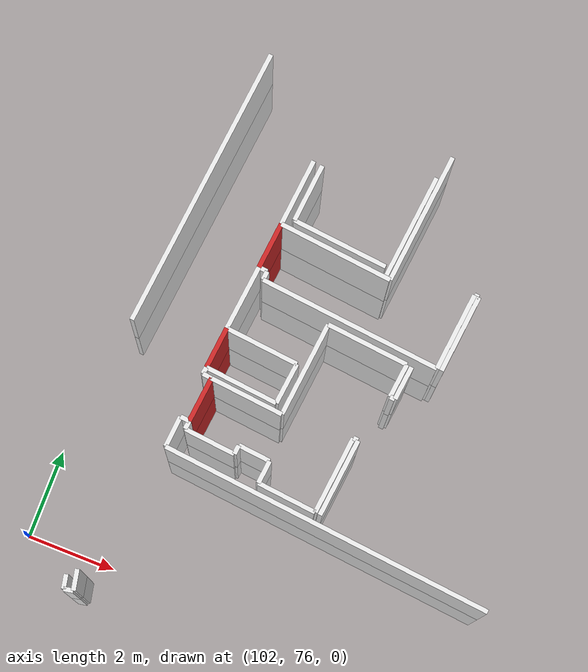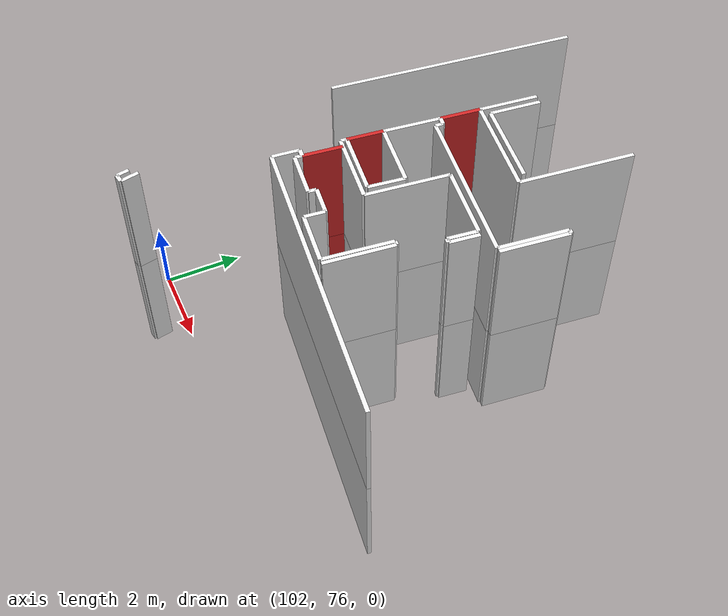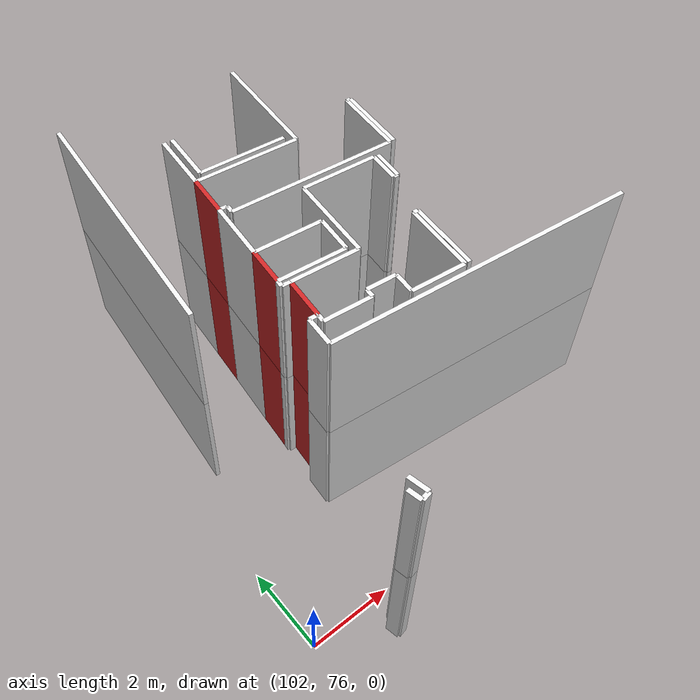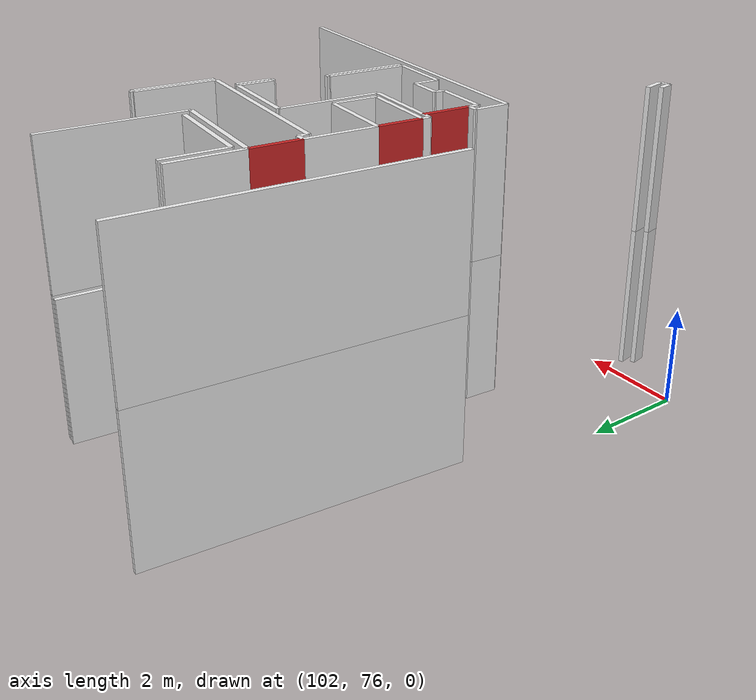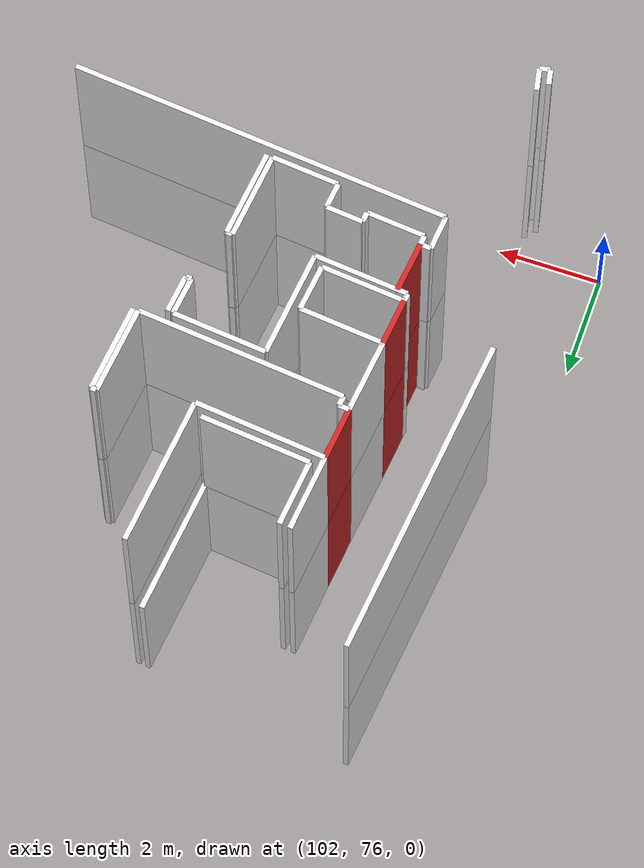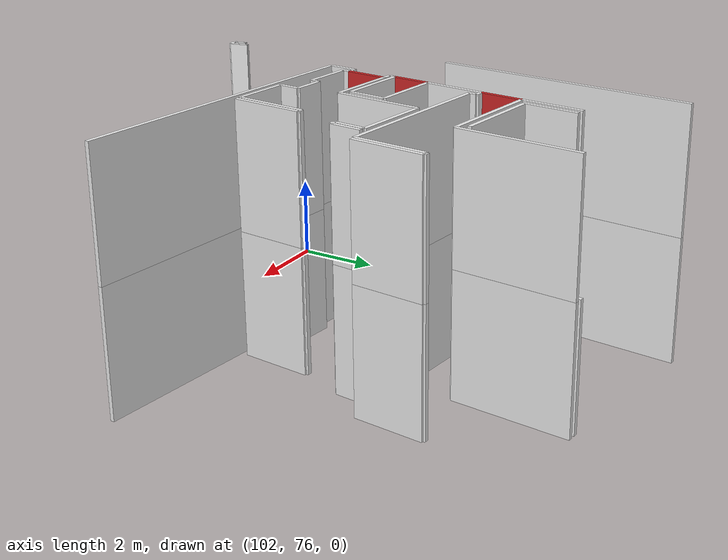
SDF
<sdf version="1.6">
 <world name="default">
  <model name="wall_104.7_79.7_1.5">
   <static>true</static>
   <pose>104.70999999999185 79.65999999991618 1.5 0 0 -1.6724851785951633</pose>
   <link name="link">
    <visual name="visual">
     <geometry><box><size>0.9850888284669952 0.1 3</size></box></geometry>
     <material>
      <script><uri>file://media/materials/scripts/gazebo.material</uri><name>Gazebo/Red</name></script>
     </material>
    </visual>
    <collision name="collision"><geometry><box><size>0.9850888284669952 0.1 3</size></box></geometry></collision>
   </link>
  </model>
  <model name="wall_104.9_83.1_1.5">
   <static>true</static>
   <pose>104.86999999999534 83.12999999988824 1.5 0 0 1.4711276743267871</pose>
   <link name="link">
    <visual name="visual">
     <geometry><box><size>1.0049875621097721 0.1 3</size></box></geometry>
     <material>
      <script><uri>file://media/materials/scripts/gazebo.material</uri><name>Gazebo/Red</name></script>
     </material>
    </visual>
    <collision name="collision"><geometry><box><size>1.0049875621097721 0.1 3</size></box></geometry></collision>
   </link>
  </model>
  <model name="wall_104.6_80.8_1.5">
   <static>true</static>
   <pose>104.625 80.77000000001863 1.5 0 0 -1.6704649792092168</pose>
   <link name="link">
    <visual name="visual">
     <geometry><box><size>0.904488806268317 0.1 3</size></box></geometry>
     <material>
      <script><uri>file://media/materials/scripts/gazebo.material</uri><name>Gazebo/Red</name></script>
     </material>
    </visual>
    <collision name="collision"><geometry><box><size>0.904488806268317 0.1 3</size></box></geometry></collision>
   </link>
  </model>
  <model name="wall_104.7_79.7_4.5">
   <static>true</static>
   <pose>104.70999999999185 79.65999999991618 4.5 0 0 -1.6724851785951633</pose>
   <link name="link">
    <visual name="visual">
     <geometry><box><size>0.9850888284669952 0.1 3</size></box></geometry>
     <material>
      <script><uri>file://media/materials/scripts/gazebo.material</uri><name>Gazebo/Red</name></script>
     </material>
    </visual>
    <collision name="collision"><geometry><box><size>0.9850888284669952 0.1 3</size></box></geometry></collision>
   </link>
  </model>
  <model name="wall_104.9_83.1_4.5">
   <static>true</static>
   <pose>104.86999999999534 83.12999999988824 4.5 0 0 1.4711276743267871</pose>
   <link name="link">
    <visual name="visual">
     <geometry><box><size>1.0049875621097721 0.1 3</size></box></geometry>
     <material>
      <script><uri>file://media/materials/scripts/gazebo.material</uri><name>Gazebo/Red</name></script>
     </material>
    </visual>
    <collision name="collision"><geometry><box><size>1.0049875621097721 0.1 3</size></box></geometry></collision>
   </link>
  </model>
  <model name="wall_104.6_80.8_4.5">
   <static>true</static>
   <pose>104.625 80.77000000001863 4.5 0 0 -1.6704649792092168</pose>
   <link name="link">
    <visual name="visual">
     <geometry><box><size>0.904488806268317 0.1 3</size></box></geometry>
     <material>
      <script><uri>file://media/materials/scripts/gazebo.material</uri><name>Gazebo/Red</name></script>
     </material>
    </visual>
    <collision name="collision"><geometry><box><size>0.904488806268317 0.1 3</size></box></geometry></collision>
   </link>
  </model>
  <model name="wall_108.4_81.5_1.5">
   <static>true</static>
   <pose>108.42999999999302 81.48999999999069 1.5 0 0 -1.6784861976067038</pose>
   <link name="link">
    <visual name="visual">
     <geometry><box><size>0.7443117623918901 0.1 3</size></box></geometry>
     <material>
      <script><uri>file://media/materials/scripts/gazebo.material</uri><name>Gazebo/White</name></script>
     </material>
    </visual>
    <collision name="collision"><geometry><box><size>0.7443117623918901 0.1 3</size></box></geometry></collision>
   </link>
  </model>
  <model name="wall_108.3_81.1_1.5">
   <static>true</static>
   <pose>108.33500000002095 81.125 1.5 0 0 3.0509327683929186</pose>
   <link name="link">
    <visual name="visual">
     <geometry><box><size>0.11045361013772383 0.1 3</size></box></geometry>
     <material>
      <script><uri>file://media/materials/scripts/gazebo.material</uri><name>Gazebo/White</name></script>
     </material>
    </visual>
    <collision name="collision"><geometry><box><size>0.11045361013772383 0.1 3</size></box></geometry></collision>
   </link>
  </model>
  <model name="wall_108.3_81.5_1.5">
   <static>true</static>
   <pose>108.32000000000698 81.5 1.5 0 0 1.463106456050333</pose>
   <link name="link">
    <visual name="visual">
     <geometry><box><size>0.7443117628548539 0.1 3</size></box></geometry>
     <material>
      <script><uri>file://media/materials/scripts/gazebo.material</uri><name>Gazebo/White</name></script>
     </material>
    </visual>
    <collision name="collision"><geometry><box><size>0.7443117628548539 0.1 3</size></box></geometry></collision>
   </link>
  </model>
  <model name="wall_107.5_82.0_1.5">
   <static>true</static>
   <pose>107.46499999999651 81.95999999996275 1.5 0 0 3.04137090397356</pose>
   <link name="link">
    <visual name="visual">
     <geometry><box><size>1.7990275150251853 0.1 3</size></box></geometry>
     <material>
      <script><uri>file://media/materials/scripts/gazebo.material</uri><name>Gazebo/White</name></script>
     </material>
    </visual>
    <collision name="collision"><geometry><box><size>1.7990275150251853 0.1 3</size></box></geometry></collision>
   </link>
  </model>
  <model name="wall_106.5_81.0_1.5">
   <static>true</static>
   <pose>106.46499999999651 81.02000000001863 1.5 0 0 -1.672387129760109</pose>
   <link name="link">
    <visual name="visual">
     <geometry><box><size>2.070676217644975 0.1 3</size></box></geometry>
     <material>
      <script><uri>file://media/materials/scripts/gazebo.material</uri><name>Gazebo/White</name></script>
     </material>
    </visual>
    <collision name="collision"><geometry><box><size>2.070676217644975 0.1 3</size></box></geometry></collision>
   </link>
  </model>
  <model name="wall_105.6_80.1_1.5">
   <static>true</static>
   <pose>105.55999999999767 80.07000000006519 1.5 0 0 3.041924001293137</pose>
   <link name="link">
    <visual name="visual">
     <geometry><box><size>1.6079800993246671 0.1 3</size></box></geometry>
     <material>
      <script><uri>file://media/materials/scripts/gazebo.material</uri><name>Gazebo/White</name></script>
     </material>
    </visual>
    <collision name="collision"><geometry><box><size>1.6079800993246671 0.1 3</size></box></geometry></collision>
   </link>
  </model>
  <model name="wall_104.6_79.1_1.5">
   <static>true</static>
   <pose>104.64999999999418 79.0800000000745 1.5 0 0 -1.6814535479332997</pose>
   <link name="link">
    <visual name="visual">
     <geometry><box><size>0.1811077024621769 0.1 3</size></box></geometry>
     <material>
      <script><uri>file://media/materials/scripts/gazebo.material</uri><name>Gazebo/White</name></script>
     </material>
    </visual>
    <collision name="collision"><geometry><box><size>0.1811077024621769 0.1 3</size></box></geometry></collision>
   </link>
  </model>
  <model name="wall_105.2_78.9_1.5">
   <static>true</static>
   <pose>105.20000000001164 78.93500000005588 1.5 0 0 -0.09790030803535979</pose>
   <link name="link">
    <visual name="visual">
     <geometry><box><size>1.1253888217248873 0.1 3</size></box></geometry>
     <material>
      <script><uri>file://media/materials/scripts/gazebo.material</uri><name>Gazebo/White</name></script>
     </material>
    </visual>
    <collision name="collision"><geometry><box><size>1.1253888217248873 0.1 3</size></box></geometry></collision>
   </link>
  </model>
  <model name="wall_105.8_79.0_1.5">
   <static>true</static>
   <pose>105.77000000001863 78.97999999998137 1.5 0 0 1.4711276743037347</pose>
   <link name="link">
    <visual name="visual">
     <geometry><box><size>0.20099751260961132 0.1 3</size></box></geometry>
     <material>
      <script><uri>file://media/materials/scripts/gazebo.material</uri><name>Gazebo/White</name></script>
     </material>
    </visual>
    <collision name="collision"><geometry><box><size>0.20099751260961132 0.1 3</size></box></geometry></collision>
   </link>
  </model>
  <model name="wall_106.1_79.0_1.5">
   <static>true</static>
   <pose>106.13000000000466 79.0449999999255 1.5 0 0 -0.0996686529192806</pose>
   <link name="link">
    <visual name="visual">
     <geometry><box><size>0.7034912934617817 0.1 3</size></box></geometry>
     <material>
      <script><uri>file://media/materials/scripts/gazebo.material</uri><name>Gazebo/White</name></script>
     </material>
    </visual>
    <collision name="collision"><geometry><box><size>0.7034912934617817 0.1 3</size></box></geometry></collision>
   </link>
  </model>
  <model name="wall_106.5_78.8_1.5">
   <static>true</static>
   <pose>106.4549999999872 78.75999999977648 1.5 0 0 -1.6704649792630062</pose>
   <link name="link">
    <visual name="visual">
     <geometry><box><size>0.5024937810548861 0.1 3</size></box></geometry>
     <material>
      <script><uri>file://media/materials/scripts/gazebo.material</uri><name>Gazebo/White</name></script>
     </material>
    </visual>
    <collision name="collision"><geometry><box><size>0.5024937810548861 0.1 3</size></box></geometry></collision>
   </link>
  </model>
  <model name="wall_107.1_78.4_1.5">
   <static>true</static>
   <pose>107.07499999998254 78.44499999983236 1.5 0 0 -0.10043611196470777</pose>
   <link name="link">
    <visual name="visual">
     <geometry><box><size>1.2965338406369806 0.1 3</size></box></geometry>
     <material>
      <script><uri>file://media/materials/scripts/gazebo.material</uri><name>Gazebo/White</name></script>
     </material>
    </visual>
    <collision name="collision"><geometry><box><size>1.2965338406369806 0.1 3</size></box></geometry></collision>
   </link>
  </model>
  <model name="wall_107.8_79.2_1.5">
   <static>true</static>
   <pose>107.80499999999302 79.2249999998603 1.5 0 0 1.4705418512614783</pose>
   <link name="link">
    <visual name="visual">
     <geometry><box><size>1.6985287750948987 0.1 3</size></box></geometry>
     <material>
      <script><uri>file://media/materials/scripts/gazebo.material</uri><name>Gazebo/White</name></script>
     </material>
    </visual>
    <collision name="collision"><geometry><box><size>1.6985287750948987 0.1 3</size></box></geometry></collision>
   </link>
  </model>
  <model name="wall_107.9_80.1_1.5">
   <static>true</static>
   <pose>107.94500000000698 80.06499999994412 1.5 0 0 -0.09065988519687482</pose>
   <link name="link">
    <visual name="visual">
     <geometry><box><size>0.11045361013772383 0.1 3</size></box></geometry>
     <material>
      <script><uri>file://media/materials/scripts/gazebo.material</uri><name>Gazebo/White</name></script>
     </material>
    </visual>
    <collision name="collision"><geometry><box><size>0.11045361013772383 0.1 3</size></box></geometry></collision>
   </link>
  </model>
  <model name="wall_107.9_79.2_1.5">
   <static>true</static>
   <pose>107.91500000000815 79.20999999996275 1.5 0 0 -1.6704649792657182</pose>
   <link name="link">
    <visual name="visual">
     <geometry><box><size>1.7084788557742698 0.1 3</size></box></geometry>
     <material>
      <script><uri>file://media/materials/scripts/gazebo.material</uri><name>Gazebo/White</name></script>
     </material>
    </visual>
    <collision name="collision"><geometry><box><size>1.7084788557742698 0.1 3</size></box></geometry></collision>
   </link>
  </model>
  <model name="wall_109.1_82.9_1.5">
   <static>true</static>
   <pose>109.14499999998952 82.85499999998137 1.5 0 0 1.470541851323015</pose>
   <link name="link">
    <visual name="visual">
     <geometry><box><size>1.698528775552396 0.1 3</size></box></geometry>
     <material>
      <script><uri>file://media/materials/scripts/gazebo.material</uri><name>Gazebo/White</name></script>
     </material>
    </visual>
    <collision name="collision"><geometry><box><size>1.698528775552396 0.1 3</size></box></geometry></collision>
   </link>
  </model>
  <model name="wall_109.2_83.7_1.5">
   <static>true</static>
   <pose>109.17999999999302 83.7050000000745 1.5 0 0 3.0419240032886226</pose>
   <link name="link">
    <visual name="visual">
     <geometry><box><size>0.10049875616580058 0.1 3</size></box></geometry>
     <material>
      <script><uri>file://media/materials/scripts/gazebo.material</uri><name>Gazebo/White</name></script>
     </material>
    </visual>
    <collision name="collision"><geometry><box><size>0.10049875616580058 0.1 3</size></box></geometry></collision>
   </link>
  </model>
  <model name="wall_109.0_82.9_1.5">
   <static>true</static>
   <pose>109.0450000000128 82.86499999999069 1.5 0 0 -1.6710508022942177</pose>
   <link name="link">
    <visual name="visual">
     <geometry><box><size>1.698528775089073 0.1 3</size></box></geometry>
     <material>
      <script><uri>file://media/materials/scripts/gazebo.material</uri><name>Gazebo/White</name></script>
     </material>
    </visual>
    <collision name="collision"><geometry><box><size>1.698528775089073 0.1 3</size></box></geometry></collision>
   </link>
  </model>
  <model name="wall_107.0_82.2_1.5">
   <static>true</static>
   <pose>106.97500000000582 82.21999999997206 1.5 0 0 3.04117587158638</pose>
   <link name="link">
    <visual name="visual">
     <geometry><box><size>3.990100249387955 0.1 3</size></box></geometry>
     <material>
      <script><uri>file://media/materials/scripts/gazebo.material</uri><name>Gazebo/White</name></script>
     </material>
    </visual>
    <collision name="collision"><geometry><box><size>3.990100249387955 0.1 3</size></box></geometry></collision>
   </link>
  </model>
  <model name="wall_105.0_82.5_1.5">
   <static>true</static>
   <pose>105.0 82.51499999989755 1.5 0 0 1.4659193879370842</pose>
   <link name="link">
    <visual name="visual">
     <geometry><box><size>0.19104973169180559 0.1 3</size></box></geometry>
     <material>
      <script><uri>file://media/materials/scripts/gazebo.material</uri><name>Gazebo/White</name></script>
     </material>
    </visual>
    <collision name="collision"><geometry><box><size>0.19104973169180559 0.1 3</size></box></geometry></collision>
   </link>
  </model>
  <model name="wall_104.9_82.6_1.5">
   <static>true</static>
   <pose>104.91500000000815 82.61999999987893 1.5 0 0 3.0367157147638757</pose>
   <link name="link">
    <visual name="visual">
     <geometry><box><size>0.19104973174969345 0.1 3</size></box></geometry>
     <material>
      <script><uri>file://media/materials/scripts/gazebo.material</uri><name>Gazebo/White</name></script>
     </material>
    </visual>
    <collision name="collision"><geometry><box><size>0.19104973174969345 0.1 3</size></box></geometry></collision>
   </link>
  </model>
  <model name="wall_106.2_83.5_1.5">
   <static>true</static>
   <pose>106.16499999997905 83.5 1.5 0 0 -0.1040406436245778</pose>
   <link name="link">
    <visual name="visual">
     <geometry><box><size>2.5035374971902042 0.1 3</size></box></geometry>
     <material>
      <script><uri>file://media/materials/scripts/gazebo.material</uri><name>Gazebo/White</name></script>
     </material>
    </visual>
    <collision name="collision"><geometry><box><size>2.5035374971902042 0.1 3</size></box></geometry></collision>
   </link>
  </model>
  <model name="wall_107.5_84.8_1.5">
   <static>true</static>
   <pose>107.54999999998836 84.79000000003725 1.5 0 0 1.4725223735240212</pose>
   <link name="link">
    <visual name="visual">
     <geometry><box><size>2.853769436932364 0.1 3</size></box></geometry>
     <material>
      <script><uri>file://media/materials/scripts/gazebo.material</uri><name>Gazebo/White</name></script>
     </material>
    </visual>
    <collision name="collision"><geometry><box><size>2.853769436932364 0.1 3</size></box></geometry></collision>
   </link>
  </model>
  <model name="wall_107.4_84.9_1.5">
   <static>true</static>
   <pose>107.36499999999069 84.90999999991618 1.5 0 0 -1.6727146942777542</pose>
   <link name="link">
    <visual name="visual">
     <geometry><box><size>2.6537709020747235 0.1 3</size></box></geometry>
     <material>
      <script><uri>file://media/materials/scripts/gazebo.material</uri><name>Gazebo/White</name></script>
     </material>
    </visual>
    <collision name="collision"><geometry><box><size>2.6537709020747235 0.1 3</size></box></geometry></collision>
   </link>
  </model>
  <model name="wall_106.2_83.7_1.5">
   <static>true</static>
   <pose>106.18499999999767 83.69499999983236 1.5 0 0 3.041450292007573</pose>
   <link name="link">
    <visual name="visual">
     <geometry><box><size>2.1005237441762237 0.1 3</size></box></geometry>
     <material>
      <script><uri>file://media/materials/scripts/gazebo.material</uri><name>Gazebo/White</name></script>
     </material>
    </visual>
    <collision name="collision"><geometry><box><size>2.1005237441762237 0.1 3</size></box></geometry></collision>
   </link>
  </model>
  <model name="wall_105.2_84.4_1.5">
   <static>true</static>
   <pose>105.20000000001164 84.43499999982305 1.5 0 0 1.4765878384548259</pose>
   <link name="link">
    <visual name="visual">
     <geometry><box><size>1.2756566936469207 0.1 3</size></box></geometry>
     <material>
      <script><uri>file://media/materials/scripts/gazebo.material</uri><name>Gazebo/White</name></script>
     </material>
    </visual>
    <collision name="collision"><geometry><box><size>1.2756566936469207 0.1 3</size></box></geometry></collision>
   </link>
  </model>
  <model name="wall_103.1_83.8_1.5">
   <static>true</static>
   <pose>103.11499999999069 83.75499999988824 1.5 0 0 1.4690420042953642</pose>
   <link name="link">
    <visual name="visual">
     <geometry><box><size>6.202080296085054 0.1 3</size></box></geometry>
     <material>
      <script><uri>file://media/materials/scripts/gazebo.material</uri><name>Gazebo/White</name></script>
     </material>
    </visual>
    <collision name="collision"><geometry><box><size>6.202080296085054 0.1 3</size></box></geometry></collision>
   </link>
  </model>
  <model name="wall_105.0_84.4_1.5">
   <static>true</static>
   <pose>104.98999999999069 84.35999999986961 1.5 0 0 -1.6663944454706425</pose>
   <link name="link">
    <visual name="visual">
     <geometry><box><size>1.466696969348179 0.1 3</size></box></geometry>
     <material>
      <script><uri>file://media/materials/scripts/gazebo.material</uri><name>Gazebo/White</name></script>
     </material>
    </visual>
    <collision name="collision"><geometry><box><size>1.466696969348179 0.1 3</size></box></geometry></collision>
   </link>
  </model>
  <model name="wall_104.7_81.9_1.5">
   <static>true</static>
   <pose>104.74499999999534 81.92500000004657 1.5 0 0 -1.676780684824448</pose>
   <link name="link">
    <visual name="visual">
     <geometry><box><size>1.417956275459167 0.1 3</size></box></geometry>
     <material>
      <script><uri>file://media/materials/scripts/gazebo.material</uri><name>Gazebo/White</name></script>
     </material>
    </visual>
    <collision name="collision"><geometry><box><size>1.417956275459167 0.1 3</size></box></geometry></collision>
   </link>
  </model>
  <model name="wall_104.6_80.2_1.5">
   <static>true</static>
   <pose>104.57000000000698 80.24499999987893 1.5 0 0 -1.7033478592949163</pose>
   <link name="link">
    <visual name="visual">
     <geometry><box><size>0.15132745941436201 0.1 3</size></box></geometry>
     <material>
      <script><uri>file://media/materials/scripts/gazebo.material</uri><name>Gazebo/White</name></script>
     </material>
    </visual>
    <collision name="collision"><geometry><box><size>0.15132745941436201 0.1 3</size></box></geometry></collision>
   </link>
  </model>
  <model name="wall_104.7_80.2_1.5">
   <static>true</static>
   <pose>104.66000000000349 80.15999999991618 1.5 0 0 -0.09966865257760905</pose>
   <link name="link">
    <visual name="visual">
     <geometry><box><size>0.20099751243585498 0.1 3</size></box></geometry>
     <material>
      <script><uri>file://media/materials/scripts/gazebo.material</uri><name>Gazebo/White</name></script>
     </material>
    </visual>
    <collision name="collision"><geometry><box><size>0.20099751243585498 0.1 3</size></box></geometry></collision>
   </link>
  </model>
  <model name="wall_104.6_79.2_1.5">
   <static>true</static>
   <pose>104.55999999999767 79.17999999993481 1.5 0 0 3.0419240009833683</pose>
   <link name="link">
    <visual name="visual">
     <geometry><box><size>0.20099751237793617 0.1 3</size></box></geometry>
     <material>
      <script><uri>file://media/materials/scripts/gazebo.material</uri><name>Gazebo/White</name></script>
     </material>
    </visual>
    <collision name="collision"><geometry><box><size>0.20099751237793617 0.1 3</size></box></geometry></collision>
   </link>
  </model>
  <model name="wall_104.4_78.8_1.5">
   <static>true</static>
   <pose>104.43000000002212 78.8499999998603 1.5 0 0 -1.6588037002976554</pose>
   <link name="link">
    <visual name="visual">
     <geometry><box><size>0.6826419268018251 0.1 3</size></box></geometry>
     <material>
      <script><uri>file://media/materials/scripts/gazebo.material</uri><name>Gazebo/White</name></script>
     </material>
    </visual>
    <collision name="collision"><geometry><box><size>0.6826419268018251 0.1 3</size></box></geometry></collision>
   </link>
  </model>
  <model name="wall_108.1_78.1_1.5">
   <static>true</static>
   <pose>108.05000000001746 78.1449999997858 1.5 0 0 3.0419240011009996</pose>
   <link name="link">
    <visual name="visual">
     <geometry><box><size>7.336409203404813 0.1 3</size></box></geometry>
     <material>
      <script><uri>file://media/materials/scripts/gazebo.material</uri><name>Gazebo/White</name></script>
     </material>
    </visual>
    <collision name="collision"><geometry><box><size>7.336409203404813 0.1 3</size></box></geometry></collision>
   </link>
  </model>
  <model name="wall_103.7_75.3_1.5">
   <static>true</static>
   <pose>103.7049999999872 75.32999999984168 1.5 0 0 -1.3690339823938056</pose>
   <link name="link">
    <visual name="visual">
     <geometry><box><size>0.44911023140809897 0.1 3</size></box></geometry>
     <material>
      <script><uri>file://media/materials/scripts/gazebo.material</uri><name>Gazebo/White</name></script>
     </material>
    </visual>
    <collision name="collision"><geometry><box><size>0.44911023140809897 0.1 3</size></box></geometry></collision>
   </link>
  </model>
  <model name="wall_105.5_81.1_1.5">
   <static>true</static>
   <pose>105.47000000000116 81.14000000013039 1.5 0 0 -0.099668652581211</pose>
   <link name="link">
    <visual name="visual">
     <geometry><box><size>1.607980099428921 0.1 3</size></box></geometry>
     <material>
      <script><uri>file://media/materials/scripts/gazebo.material</uri><name>Gazebo/White</name></script>
     </material>
    </visual>
    <collision name="collision"><geometry><box><size>1.607980099428921 0.1 3</size></box></geometry></collision>
   </link>
  </model>
  <model name="wall_106.2_80.6_1.5">
   <static>true</static>
   <pose>106.22000000000116 80.61000000010245 1.5 0 0 -1.6814535480184818</pose>
   <link name="link">
    <visual name="visual">
     <geometry><box><size>0.9055385137250358 0.1 3</size></box></geometry>
     <material>
      <script><uri>file://media/materials/scripts/gazebo.material</uri><name>Gazebo/White</name></script>
     </material>
    </visual>
    <collision name="collision"><geometry><box><size>0.9055385137250358 0.1 3</size></box></geometry></collision>
   </link>
  </model>
  <model name="wall_105.4_80.2_1.5">
   <static>true</static>
   <pose>105.375 80.23999999999069 1.5 0 0 3.041301336367988</pose>
   <link name="link">
    <visual name="visual">
     <geometry><box><size>1.598030037200495 0.1 3</size></box></geometry>
     <material>
      <script><uri>file://media/materials/scripts/gazebo.material</uri><name>Gazebo/White</name></script>
     </material>
    </visual>
    <collision name="collision"><geometry><box><size>1.598030037200495 0.1 3</size></box></geometry></collision>
   </link>
  </model>
  <model name="wall_103.5_75.2_1.5">
   <static>true</static>
   <pose>103.51999999998952 75.21999999997206 1.5 0 0 -1.3734007671315789</pose>
   <link name="link">
    <visual name="visual">
     <geometry><box><size>0.30594117108908153 0.1 3</size></box></geometry>
     <material>
      <script><uri>file://media/materials/scripts/gazebo.material</uri><name>Gazebo/White</name></script>
     </material>
    </visual>
    <collision name="collision"><geometry><box><size>0.30594117108908153 0.1 3</size></box></geometry></collision>
   </link>
  </model>
  <model name="wall_103.6_75.1_1.5">
   <static>true</static>
   <pose>103.64999999999418 75.08999999985099 1.5 0 0 0.19739556001778746</pose>
   <link name="link">
    <visual name="visual">
     <geometry><box><size>0.20396078056243275 0.1 3</size></box></geometry>
     <material>
      <script><uri>file://media/materials/scripts/gazebo.material</uri><name>Gazebo/White</name></script>
     </material>
    </visual>
    <collision name="collision"><geometry><box><size>0.20396078056243275 0.1 3</size></box></geometry></collision>
   </link>
  </model>
  <model name="wall_108.4_81.5_4.5">
   <static>true</static>
   <pose>108.42999999999302 81.48999999999069 4.5 0 0 -1.6784861976067038</pose>
   <link name="link">
    <visual name="visual">
     <geometry><box><size>0.7443117623918901 0.1 3</size></box></geometry>
     <material>
      <script><uri>file://media/materials/scripts/gazebo.material</uri><name>Gazebo/White</name></script>
     </material>
    </visual>
    <collision name="collision"><geometry><box><size>0.7443117623918901 0.1 3</size></box></geometry></collision>
   </link>
  </model>
  <model name="wall_108.3_81.1_4.5">
   <static>true</static>
   <pose>108.33500000002095 81.125 4.5 0 0 3.0509327683929186</pose>
   <link name="link">
    <visual name="visual">
     <geometry><box><size>0.11045361013772383 0.1 3</size></box></geometry>
     <material>
      <script><uri>file://media/materials/scripts/gazebo.material</uri><name>Gazebo/White</name></script>
     </material>
    </visual>
    <collision name="collision"><geometry><box><size>0.11045361013772383 0.1 3</size></box></geometry></collision>
   </link>
  </model>
  <model name="wall_108.3_81.5_4.5">
   <static>true</static>
   <pose>108.32000000000698 81.5 4.5 0 0 1.463106456050333</pose>
   <link name="link">
    <visual name="visual">
     <geometry><box><size>0.7443117628548539 0.1 3</size></box></geometry>
     <material>
      <script><uri>file://media/materials/scripts/gazebo.material</uri><name>Gazebo/White</name></script>
     </material>
    </visual>
    <collision name="collision"><geometry><box><size>0.7443117628548539 0.1 3</size></box></geometry></collision>
   </link>
  </model>
  <model name="wall_107.5_82.0_4.5">
   <static>true</static>
   <pose>107.46499999999651 81.95999999996275 4.5 0 0 3.04137090397356</pose>
   <link name="link">
    <visual name="visual">
     <geometry><box><size>1.7990275150251853 0.1 3</size></box></geometry>
     <material>
      <script><uri>file://media/materials/scripts/gazebo.material</uri><name>Gazebo/White</name></script>
     </material>
    </visual>
    <collision name="collision"><geometry><box><size>1.7990275150251853 0.1 3</size></box></geometry></collision>
   </link>
  </model>
  <model name="wall_106.5_81.0_4.5">
   <static>true</static>
   <pose>106.46499999999651 81.02000000001863 4.5 0 0 -1.672387129760109</pose>
   <link name="link">
    <visual name="visual">
     <geometry><box><size>2.070676217644975 0.1 3</size></box></geometry>
     <material>
      <script><uri>file://media/materials/scripts/gazebo.material</uri><name>Gazebo/White</name></script>
     </material>
    </visual>
    <collision name="collision"><geometry><box><size>2.070676217644975 0.1 3</size></box></geometry></collision>
   </link>
  </model>
  <model name="wall_105.6_80.1_4.5">
   <static>true</static>
   <pose>105.55999999999767 80.07000000006519 4.5 0 0 3.041924001293137</pose>
   <link name="link">
    <visual name="visual">
     <geometry><box><size>1.6079800993246671 0.1 3</size></box></geometry>
     <material>
      <script><uri>file://media/materials/scripts/gazebo.material</uri><name>Gazebo/White</name></script>
     </material>
    </visual>
    <collision name="collision"><geometry><box><size>1.6079800993246671 0.1 3</size></box></geometry></collision>
   </link>
  </model>
  <model name="wall_104.6_79.1_4.5">
   <static>true</static>
   <pose>104.64999999999418 79.0800000000745 4.5 0 0 -1.6814535479332997</pose>
   <link name="link">
    <visual name="visual">
     <geometry><box><size>0.1811077024621769 0.1 3</size></box></geometry>
     <material>
      <script><uri>file://media/materials/scripts/gazebo.material</uri><name>Gazebo/White</name></script>
     </material>
    </visual>
    <collision name="collision"><geometry><box><size>0.1811077024621769 0.1 3</size></box></geometry></collision>
   </link>
  </model>
  <model name="wall_105.2_78.9_4.5">
   <static>true</static>
   <pose>105.20000000001164 78.93500000005588 4.5 0 0 -0.09790030803535979</pose>
   <link name="link">
    <visual name="visual">
     <geometry><box><size>1.1253888217248873 0.1 3</size></box></geometry>
     <material>
      <script><uri>file://media/materials/scripts/gazebo.material</uri><name>Gazebo/White</name></script>
     </material>
    </visual>
    <collision name="collision"><geometry><box><size>1.1253888217248873 0.1 3</size></box></geometry></collision>
   </link>
  </model>
  <model name="wall_105.8_79.0_4.5">
   <static>true</static>
   <pose>105.77000000001863 78.97999999998137 4.5 0 0 1.4711276743037347</pose>
   <link name="link">
    <visual name="visual">
     <geometry><box><size>0.20099751260961132 0.1 3</size></box></geometry>
     <material>
      <script><uri>file://media/materials/scripts/gazebo.material</uri><name>Gazebo/White</name></script>
     </material>
    </visual>
    <collision name="collision"><geometry><box><size>0.20099751260961132 0.1 3</size></box></geometry></collision>
   </link>
  </model>
  <model name="wall_106.1_79.0_4.5">
   <static>true</static>
   <pose>106.13000000000466 79.0449999999255 4.5 0 0 -0.0996686529192806</pose>
   <link name="link">
    <visual name="visual">
     <geometry><box><size>0.7034912934617817 0.1 3</size></box></geometry>
     <material>
      <script><uri>file://media/materials/scripts/gazebo.material</uri><name>Gazebo/White</name></script>
     </material>
    </visual>
    <collision name="collision"><geometry><box><size>0.7034912934617817 0.1 3</size></box></geometry></collision>
   </link>
  </model>
  <model name="wall_106.5_78.8_4.5">
   <static>true</static>
   <pose>106.4549999999872 78.75999999977648 4.5 0 0 -1.6704649792630062</pose>
   <link name="link">
    <visual name="visual">
     <geometry><box><size>0.5024937810548861 0.1 3</size></box></geometry>
     <material>
      <script><uri>file://media/materials/scripts/gazebo.material</uri><name>Gazebo/White</name></script>
     </material>
    </visual>
    <collision name="collision"><geometry><box><size>0.5024937810548861 0.1 3</size></box></geometry></collision>
   </link>
  </model>
  <model name="wall_107.1_78.4_4.5">
   <static>true</static>
   <pose>107.07499999998254 78.44499999983236 4.5 0 0 -0.10043611196470777</pose>
   <link name="link">
    <visual name="visual">
     <geometry><box><size>1.2965338406369806 0.1 3</size></box></geometry>
     <material>
      <script><uri>file://media/materials/scripts/gazebo.material</uri><name>Gazebo/White</name></script>
     </material>
    </visual>
    <collision name="collision"><geometry><box><size>1.2965338406369806 0.1 3</size></box></geometry></collision>
   </link>
  </model>
  <model name="wall_107.8_79.2_4.5">
   <static>true</static>
   <pose>107.80499999999302 79.2249999998603 4.5 0 0 1.4705418512614783</pose>
   <link name="link">
    <visual name="visual">
     <geometry><box><size>1.6985287750948987 0.1 3</size></box></geometry>
     <material>
      <script><uri>file://media/materials/scripts/gazebo.material</uri><name>Gazebo/White</name></script>
     </material>
    </visual>
    <collision name="collision"><geometry><box><size>1.6985287750948987 0.1 3</size></box></geometry></collision>
   </link>
  </model>
  <model name="wall_107.9_80.1_4.5">
   <static>true</static>
   <pose>107.94500000000698 80.06499999994412 4.5 0 0 -0.09065988519687482</pose>
   <link name="link">
    <visual name="visual">
     <geometry><box><size>0.11045361013772383 0.1 3</size></box></geometry>
     <material>
      <script><uri>file://media/materials/scripts/gazebo.material</uri><name>Gazebo/White</name></script>
     </material>
    </visual>
    <collision name="collision"><geometry><box><size>0.11045361013772383 0.1 3</size></box></geometry></collision>
   </link>
  </model>
  <model name="wall_107.9_79.2_4.5">
   <static>true</static>
   <pose>107.91500000000815 79.20999999996275 4.5 0 0 -1.6704649792657182</pose>
   <link name="link">
    <visual name="visual">
     <geometry><box><size>1.7084788557742698 0.1 3</size></box></geometry>
     <material>
      <script><uri>file://media/materials/scripts/gazebo.material</uri><name>Gazebo/White</name></script>
     </material>
    </visual>
    <collision name="collision"><geometry><box><size>1.7084788557742698 0.1 3</size></box></geometry></collision>
   </link>
  </model>
  <model name="wall_109.1_82.9_4.5">
   <static>true</static>
   <pose>109.14499999998952 82.85499999998137 4.5 0 0 1.470541851323015</pose>
   <link name="link">
    <visual name="visual">
     <geometry><box><size>1.698528775552396 0.1 3</size></box></geometry>
     <material>
      <script><uri>file://media/materials/scripts/gazebo.material</uri><name>Gazebo/White</name></script>
     </material>
    </visual>
    <collision name="collision"><geometry><box><size>1.698528775552396 0.1 3</size></box></geometry></collision>
   </link>
  </model>
  <model name="wall_109.2_83.7_4.5">
   <static>true</static>
   <pose>109.17999999999302 83.7050000000745 4.5 0 0 3.0419240032886226</pose>
   <link name="link">
    <visual name="visual">
     <geometry><box><size>0.10049875616580058 0.1 3</size></box></geometry>
     <material>
      <script><uri>file://media/materials/scripts/gazebo.material</uri><name>Gazebo/White</name></script>
     </material>
    </visual>
    <collision name="collision"><geometry><box><size>0.10049875616580058 0.1 3</size></box></geometry></collision>
   </link>
  </model>
  <model name="wall_109.0_82.9_4.5">
   <static>true</static>
   <pose>109.0450000000128 82.86499999999069 4.5 0 0 -1.6710508022942177</pose>
   <link name="link">
    <visual name="visual">
     <geometry><box><size>1.698528775089073 0.1 3</size></box></geometry>
     <material>
      <script><uri>file://media/materials/scripts/gazebo.material</uri><name>Gazebo/White</name></script>
     </material>
    </visual>
    <collision name="collision"><geometry><box><size>1.698528775089073 0.1 3</size></box></geometry></collision>
   </link>
  </model>
  <model name="wall_107.0_82.2_4.5">
   <static>true</static>
   <pose>106.97500000000582 82.21999999997206 4.5 0 0 3.04117587158638</pose>
   <link name="link">
    <visual name="visual">
     <geometry><box><size>3.990100249387955 0.1 3</size></box></geometry>
     <material>
      <script><uri>file://media/materials/scripts/gazebo.material</uri><name>Gazebo/White</name></script>
     </material>
    </visual>
    <collision name="collision"><geometry><box><size>3.990100249387955 0.1 3</size></box></geometry></collision>
   </link>
  </model>
  <model name="wall_105.0_82.5_4.5">
   <static>true</static>
   <pose>105.0 82.51499999989755 4.5 0 0 1.4659193879370842</pose>
   <link name="link">
    <visual name="visual">
     <geometry><box><size>0.19104973169180559 0.1 3</size></box></geometry>
     <material>
      <script><uri>file://media/materials/scripts/gazebo.material</uri><name>Gazebo/White</name></script>
     </material>
    </visual>
    <collision name="collision"><geometry><box><size>0.19104973169180559 0.1 3</size></box></geometry></collision>
   </link>
  </model>
  <model name="wall_104.9_82.6_4.5">
   <static>true</static>
   <pose>104.91500000000815 82.61999999987893 4.5 0 0 3.0367157147638757</pose>
   <link name="link">
    <visual name="visual">
     <geometry><box><size>0.19104973174969345 0.1 3</size></box></geometry>
     <material>
      <script><uri>file://media/materials/scripts/gazebo.material</uri><name>Gazebo/White</name></script>
     </material>
    </visual>
    <collision name="collision"><geometry><box><size>0.19104973174969345 0.1 3</size></box></geometry></collision>
   </link>
  </model>
  <model name="wall_106.2_83.5_4.5">
   <static>true</static>
   <pose>106.16499999997905 83.5 4.5 0 0 -0.1040406436245778</pose>
   <link name="link">
    <visual name="visual">
     <geometry><box><size>2.5035374971902042 0.1 3</size></box></geometry>
     <material>
      <script><uri>file://media/materials/scripts/gazebo.material</uri><name>Gazebo/White</name></script>
     </material>
    </visual>
    <collision name="collision"><geometry><box><size>2.5035374971902042 0.1 3</size></box></geometry></collision>
   </link>
  </model>
  <model name="wall_107.5_84.8_4.5">
   <static>true</static>
   <pose>107.54999999998836 84.79000000003725 4.5 0 0 1.4725223735240212</pose>
   <link name="link">
    <visual name="visual">
     <geometry><box><size>2.853769436932364 0.1 3</size></box></geometry>
     <material>
      <script><uri>file://media/materials/scripts/gazebo.material</uri><name>Gazebo/White</name></script>
     </material>
    </visual>
    <collision name="collision"><geometry><box><size>2.853769436932364 0.1 3</size></box></geometry></collision>
   </link>
  </model>
  <model name="wall_106.2_83.7_4.5">
   <static>true</static>
   <pose>106.18499999999767 83.69499999983236 4.5 0 0 3.041450292007573</pose>
   <link name="link">
    <visual name="visual">
     <geometry><box><size>2.1005237441762237 0.1 3</size></box></geometry>
     <material>
      <script><uri>file://media/materials/scripts/gazebo.material</uri><name>Gazebo/White</name></script>
     </material>
    </visual>
    <collision name="collision"><geometry><box><size>2.1005237441762237 0.1 3</size></box></geometry></collision>
   </link>
  </model>
  <model name="wall_105.2_84.4_4.5">
   <static>true</static>
   <pose>105.20000000001164 84.43499999982305 4.5 0 0 1.4765878384548259</pose>
   <link name="link">
    <visual name="visual">
     <geometry><box><size>1.2756566936469207 0.1 3</size></box></geometry>
     <material>
      <script><uri>file://media/materials/scripts/gazebo.material</uri><name>Gazebo/White</name></script>
     </material>
    </visual>
    <collision name="collision"><geometry><box><size>1.2756566936469207 0.1 3</size></box></geometry></collision>
   </link>
  </model>
  <model name="wall_103.1_83.8_4.5">
   <static>true</static>
   <pose>103.11499999999069 83.75499999988824 4.5 0 0 1.4690420042953642</pose>
   <link name="link">
    <visual name="visual">
     <geometry><box><size>6.202080296085054 0.1 3</size></box></geometry>
     <material>
      <script><uri>file://media/materials/scripts/gazebo.material</uri><name>Gazebo/White</name></script>
     </material>
    </visual>
    <collision name="collision"><geometry><box><size>6.202080296085054 0.1 3</size></box></geometry></collision>
   </link>
  </model>
  <model name="wall_105.0_84.4_4.5">
   <static>true</static>
   <pose>104.98999999999069 84.35999999986961 4.5 0 0 -1.6663944454706425</pose>
   <link name="link">
    <visual name="visual">
     <geometry><box><size>1.466696969348179 0.1 3</size></box></geometry>
     <material>
      <script><uri>file://media/materials/scripts/gazebo.material</uri><name>Gazebo/White</name></script>
     </material>
    </visual>
    <collision name="collision"><geometry><box><size>1.466696969348179 0.1 3</size></box></geometry></collision>
   </link>
  </model>
  <model name="wall_104.7_81.9_4.5">
   <static>true</static>
   <pose>104.74499999999534 81.92500000004657 4.5 0 0 -1.676780684824448</pose>
   <link name="link">
    <visual name="visual">
     <geometry><box><size>1.417956275459167 0.1 3</size></box></geometry>
     <material>
      <script><uri>file://media/materials/scripts/gazebo.material</uri><name>Gazebo/White</name></script>
     </material>
    </visual>
    <collision name="collision"><geometry><box><size>1.417956275459167 0.1 3</size></box></geometry></collision>
   </link>
  </model>
  <model name="wall_104.6_80.2_4.5">
   <static>true</static>
   <pose>104.57000000000698 80.24499999987893 4.5 0 0 -1.7033478592949163</pose>
   <link name="link">
    <visual name="visual">
     <geometry><box><size>0.15132745941436201 0.1 3</size></box></geometry>
     <material>
      <script><uri>file://media/materials/scripts/gazebo.material</uri><name>Gazebo/White</name></script>
     </material>
    </visual>
    <collision name="collision"><geometry><box><size>0.15132745941436201 0.1 3</size></box></geometry></collision>
   </link>
  </model>
  <model name="wall_104.7_80.2_4.5">
   <static>true</static>
   <pose>104.66000000000349 80.15999999991618 4.5 0 0 -0.09966865257760905</pose>
   <link name="link">
    <visual name="visual">
     <geometry><box><size>0.20099751243585498 0.1 3</size></box></geometry>
     <material>
      <script><uri>file://media/materials/scripts/gazebo.material</uri><name>Gazebo/White</name></script>
     </material>
    </visual>
    <collision name="collision"><geometry><box><size>0.20099751243585498 0.1 3</size></box></geometry></collision>
   </link>
  </model>
  <model name="wall_104.6_79.2_4.5">
   <static>true</static>
   <pose>104.55999999999767 79.17999999993481 4.5 0 0 3.0419240009833683</pose>
   <link name="link">
    <visual name="visual">
     <geometry><box><size>0.20099751237793617 0.1 3</size></box></geometry>
     <material>
      <script><uri>file://media/materials/scripts/gazebo.material</uri><name>Gazebo/White</name></script>
     </material>
    </visual>
    <collision name="collision"><geometry><box><size>0.20099751237793617 0.1 3</size></box></geometry></collision>
   </link>
  </model>
  <model name="wall_104.4_78.8_4.5">
   <static>true</static>
   <pose>104.43000000002212 78.8499999998603 4.5 0 0 -1.6588037002976554</pose>
   <link name="link">
    <visual name="visual">
     <geometry><box><size>0.6826419268018251 0.1 3</size></box></geometry>
     <material>
      <script><uri>file://media/materials/scripts/gazebo.material</uri><name>Gazebo/White</name></script>
     </material>
    </visual>
    <collision name="collision"><geometry><box><size>0.6826419268018251 0.1 3</size></box></geometry></collision>
   </link>
  </model>
  <model name="wall_108.1_78.1_4.5">
   <static>true</static>
   <pose>108.05000000001746 78.1449999997858 4.5 0 0 3.0419240011009996</pose>
   <link name="link">
    <visual name="visual">
     <geometry><box><size>7.336409203404813 0.1 3</size></box></geometry>
     <material>
      <script><uri>file://media/materials/scripts/gazebo.material</uri><name>Gazebo/White</name></script>
     </material>
    </visual>
    <collision name="collision"><geometry><box><size>7.336409203404813 0.1 3</size></box></geometry></collision>
   </link>
  </model>
  <model name="wall_103.7_75.3_4.5">
   <static>true</static>
   <pose>103.7049999999872 75.32999999984168 4.5 0 0 -1.3690339823938056</pose>
   <link name="link">
    <visual name="visual">
     <geometry><box><size>0.44911023140809897 0.1 3</size></box></geometry>
     <material>
      <script><uri>file://media/materials/scripts/gazebo.material</uri><name>Gazebo/White</name></script>
     </material>
    </visual>
    <collision name="collision"><geometry><box><size>0.44911023140809897 0.1 3</size></box></geometry></collision>
   </link>
  </model>
  <model name="wall_105.5_81.1_4.5">
   <static>true</static>
   <pose>105.47000000000116 81.14000000013039 4.5 0 0 -0.099668652581211</pose>
   <link name="link">
    <visual name="visual">
     <geometry><box><size>1.607980099428921 0.1 3</size></box></geometry>
     <material>
      <script><uri>file://media/materials/scripts/gazebo.material</uri><name>Gazebo/White</name></script>
     </material>
    </visual>
    <collision name="collision"><geometry><box><size>1.607980099428921 0.1 3</size></box></geometry></collision>
   </link>
  </model>
  <model name="wall_106.2_80.6_4.5">
   <static>true</static>
   <pose>106.22000000000116 80.61000000010245 4.5 0 0 -1.6814535480184818</pose>
   <link name="link">
    <visual name="visual">
     <geometry><box><size>0.9055385137250358 0.1 3</size></box></geometry>
     <material>
      <script><uri>file://media/materials/scripts/gazebo.material</uri><name>Gazebo/White</name></script>
     </material>
    </visual>
    <collision name="collision"><geometry><box><size>0.9055385137250358 0.1 3</size></box></geometry></collision>
   </link>
  </model>
  <model name="wall_105.4_80.2_4.5">
   <static>true</static>
   <pose>105.375 80.23999999999069 4.5 0 0 3.041301336367988</pose>
   <link name="link">
    <visual name="visual">
     <geometry><box><size>1.598030037200495 0.1 3</size></box></geometry>
     <material>
      <script><uri>file://media/materials/scripts/gazebo.material</uri><name>Gazebo/White</name></script>
     </material>
    </visual>
    <collision name="collision"><geometry><box><size>1.598030037200495 0.1 3</size></box></geometry></collision>
   </link>
  </model>
  <model name="wall_103.5_75.2_4.5">
   <static>true</static>
   <pose>103.51999999998952 75.21999999997206 4.5 0 0 -1.3734007671315789</pose>
   <link name="link">
    <visual name="visual">
     <geometry><box><size>0.30594117108908153 0.1 3</size></box></geometry>
     <material>
      <script><uri>file://media/materials/scripts/gazebo.material</uri><name>Gazebo/White</name></script>
     </material>
    </visual>
    <collision name="collision"><geometry><box><size>0.30594117108908153 0.1 3</size></box></geometry></collision>
   </link>
  </model>
  <model name="wall_103.6_75.1_4.5">
   <static>true</static>
   <pose>103.64999999999418 75.08999999985099 4.5 0 0 0.19739556001778746</pose>
   <link name="link">
    <visual name="visual">
     <geometry><box><size>0.20396078056243275 0.1 3</size></box></geometry>
     <material>
      <script><uri>file://media/materials/scripts/gazebo.material</uri><name>Gazebo/White</name></script>
     </material>
    </visual>
    <collision name="collision"><geometry><box><size>0.20396078056243275 0.1 3</size></box></geometry></collision>
   </link>
  </model>
 </world>
</sdf>
